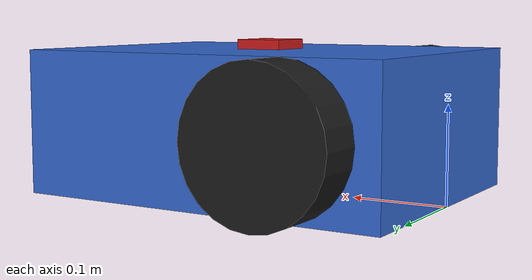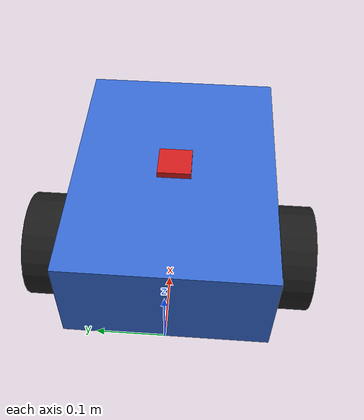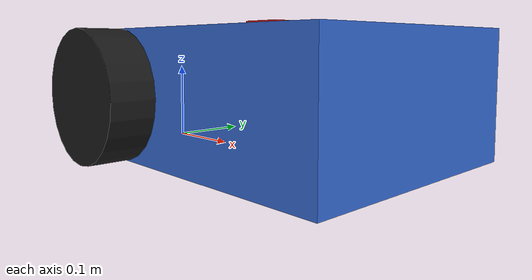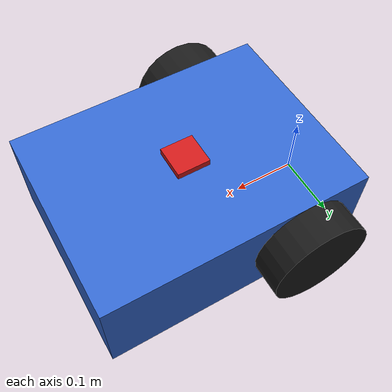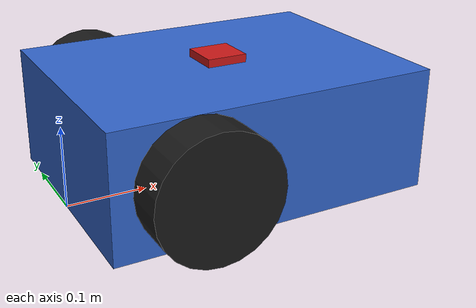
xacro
<?xml version="1.0"?>
<robot xmlns:xacro="http://www.ros.org/wiki/xacro" name="my_robot">

  <!-- ─── Properties ─────────────────────────────────────── -->
  <xacro:property name="base_length"  value="0.4"/>
  <xacro:property name="base_width"   value="0.3"/>
  <xacro:property name="base_height"  value="0.15"/>
  <xacro:property name="wheel_radius" value="0.075"/>
  <xacro:property name="wheel_width"  value="0.05"/>
  <xacro:property name="wheel_offset_y" value="0.175"/>

  <!-- ─── Base Link ──────────────────────────────────────── -->
  <link name="base_link"/>

  <link name="base_footprint"/>
  <joint name="base_footprint_joint" type="fixed">
    <parent link="base_footprint"/>
    <child  link="base_link"/>
    <origin xyz="0 0 ${wheel_radius}" rpy="0 0 0"/>
  </joint>

  <!-- Chassis -->
  <link name="chassis_link">
    <visual>
      <origin xyz="${base_length/2} 0 0" rpy="0 0 0"/>
      <geometry>
        <box size="${base_length} ${base_width} ${base_height}"/>
      </geometry>
      <material name="blue">
        <color rgba="0.2 0.4 0.8 1.0"/>
      </material>
    </visual>
    <collision>
      <origin xyz="${base_length/2} 0 0" rpy="0 0 0"/>
      <geometry>
        <box size="${base_length} ${base_width} ${base_height}"/>
      </geometry>
    </collision>
    <inertial>
      <mass value="2.0"/>
      <origin xyz="${base_length/2} 0 0"/>
      <inertia ixx="0.02" iyy="0.02" izz="0.02"
               ixy="0"    ixz="0"    iyz="0"/>
    </inertial>
  </link>
  <joint name="chassis_joint" type="fixed">
    <parent link="base_link"/>
    <child  link="chassis_link"/>
    <origin xyz="0 0 0" rpy="0 0 0"/>
  </joint>

  <!-- ─── Wheel Macro ────────────────────────────────────── -->
  <xacro:macro name="wheel" params="name y_reflect">
    <link name="${name}_wheel_link">
      <visual>
        <origin xyz="0 0 0" rpy="${pi/2} 0 0"/>
        <geometry>
          <cylinder radius="${wheel_radius}" length="${wheel_width}"/>
        </geometry>
        <material name="black">
          <color rgba="0.1 0.1 0.1 1.0"/>
        </material>
      </visual>
      <collision>
        <origin xyz="0 0 0" rpy="${pi/2} 0 0"/>
        <geometry>
          <cylinder radius="${wheel_radius}" length="${wheel_width}"/>
        </geometry>
      </collision>
      <inertial>
        <mass value="0.3"/>
        <inertia ixx="0.001" iyy="0.001" izz="0.001"
                ixy="0"     ixz="0"     iyz="0"/>
      </inertial>
    </link>
    <joint name="${name}_wheel_joint" type="continuous">
      <parent link="base_link"/>
      <child  link="${name}_wheel_link"/>
      <origin xyz="0.1 ${y_reflect * wheel_offset_y} 0" rpy="0 0 0"/>
      <axis xyz="0 1 0"/>
      <limit effort="10" velocity="10"/>
  </joint>
  </xacro:macro>

  <!-- ─── Instantiate Wheels ─────────────────────────────── -->
  <xacro:wheel name="left"  y_reflect=" 1"/>
  <xacro:wheel name="right" y_reflect="-1"/>

  <!-- ─── Caster Wheel ───────────────────────────────────── -->
  <link name="caster_link">
    <visual>
      <geometry>
        <sphere radius="${wheel_radius/2}"/>
      </geometry>
      <material name="grey">
        <color rgba="0.6 0.6 0.6 1.0"/>
      </material>
    </visual>
    <collision>
      <geometry>
        <sphere radius="${wheel_radius/2}"/>
      </geometry>
    </collision>
    <inertial>
      <mass value="0.1"/>
      <inertia ixx="0.0001" iyy="0.0001" izz="0.0001"
               ixy="0"      ixz="0"      iyz="0"/>
    </inertial>
  </link>
  <joint name="caster_joint" type="fixed">
    <parent link="base_link"/>
    <child  link="caster_link"/>
    <origin xyz="0.3 0 ${-wheel_radius/2}" rpy="0 0 0"/>
  </joint>

<!-- ─── Wheel Friction ─────────────────────────────────── -->
  <gazebo reference="left_wheel_link">
    <mu1>1.0</mu1>
    <mu2>1.0</mu2>
  </gazebo>

  <gazebo reference="right_wheel_link">
    <mu1>1.0</mu1>
    <mu2>1.0</mu2>
  </gazebo>

  <!-- ─── IMU ──────────────────────────────────────────────── -->
  <!-- Mounted at geometric center of chassis top surface       -->
  <!-- xyz = (base_length/2, 0, base_height/2) = (0.2, 0, 0.075) in chassis_link frame -->
  <link name="imu_link">
    <visual>
      <geometry>
        <box size="0.05 0.05 0.02"/>
      </geometry>
      <material name="red">
        <color rgba="0.8 0.1 0.1 1.0"/>
      </material>
    </visual>
    <inertial>
      <mass value="0.01"/>
      <inertia ixx="1e-6" ixy="0" ixz="0"
               iyy="1e-6" iyz="0" izz="1e-6"/>
    </inertial>
  </link>

  <joint name="imu_joint" type="fixed">
    <parent link="chassis_link"/>
    <child  link="imu_link"/>
    <origin xyz="${base_length/2} 0 ${base_height/2}" rpy="0 0 0"/>
  </joint>

  <gazebo>
    <plugin filename="gz-sim-diff-drive-system"
            name="gz::sim::systems::DiffDrive">
      <left_joint>left_wheel_joint</left_joint>
      <right_joint>right_wheel_joint</right_joint>
      <wheel_separation>0.35</wheel_separation>
      <wheel_radius>0.075</wheel_radius>
      <odom_publish_frequency>50</odom_publish_frequency>
      <topic>/model/my_robot/cmd_vel</topic>
      <odom_topic>odom</odom_topic>
      <frame_id>odom</frame_id>
      <child_frame_id>base_footprint</child_frame_id>
    </plugin>
  </gazebo>

  <gazebo reference="imu_link">
    <sensor name="imu_sensor" type="imu">
      <always_on>true</always_on>
      <update_rate>100</update_rate>
      <topic>/imu/data_raw</topic>
      <gz_frame_id>imu_link</gz_frame_id>
      <imu>
        <angular_velocity>
          <x><noise type="gaussian"><mean>0.0</mean><stddev>0.009</stddev></noise></x>
          <y><noise type="gaussian"><mean>0.0</mean><stddev>0.009</stddev></noise></y>
          <z><noise type="gaussian"><mean>0.0</mean><stddev>0.009</stddev></noise></z>
        </angular_velocity>
        <linear_acceleration>
          <x><noise type="gaussian"><mean>0.0</mean><stddev>0.021</stddev></noise></x>
          <y><noise type="gaussian"><mean>0.0</mean><stddev>0.021</stddev></noise></y>
          <z><noise type="gaussian"><mean>0.0</mean><stddev>0.021</stddev></noise></z>
        </linear_acceleration>
      </imu>
    </sensor>
  </gazebo>

</robot>
